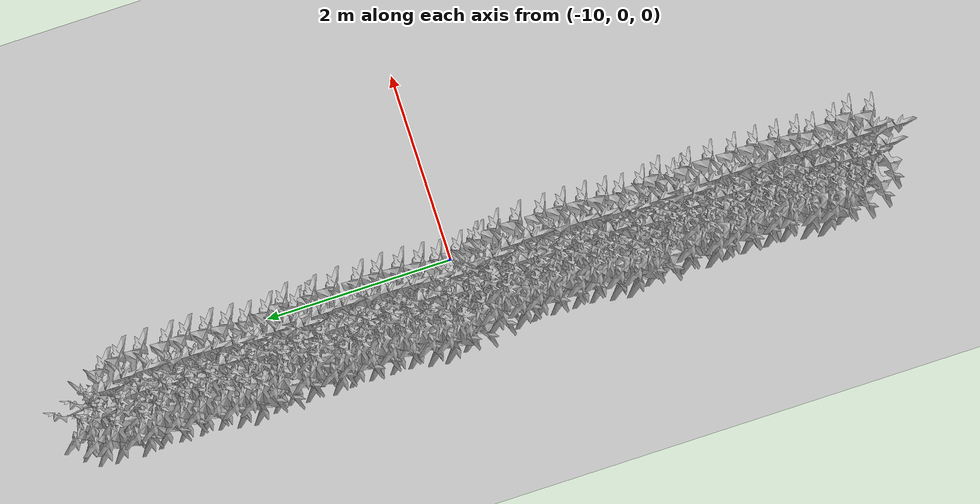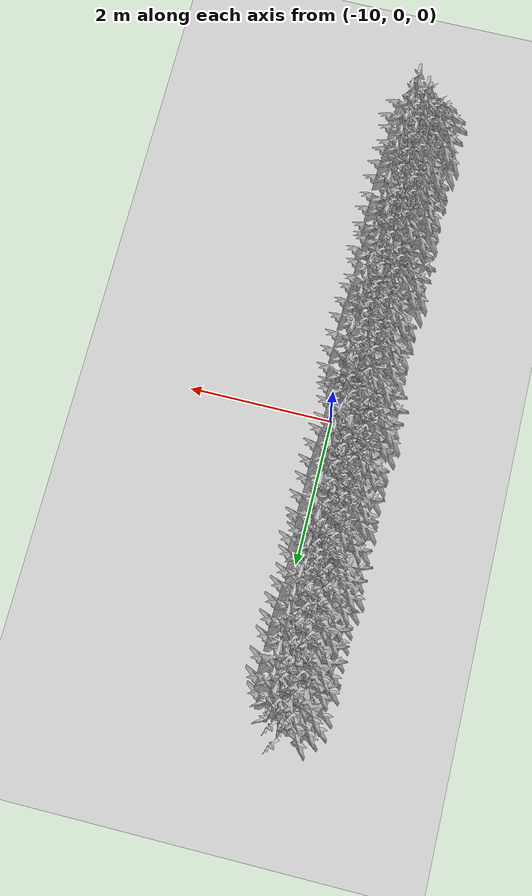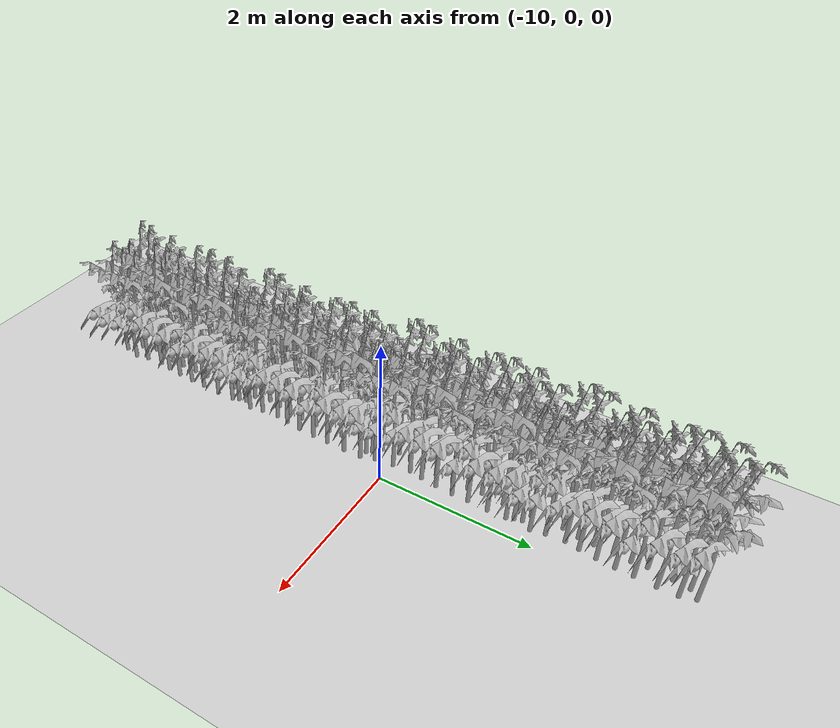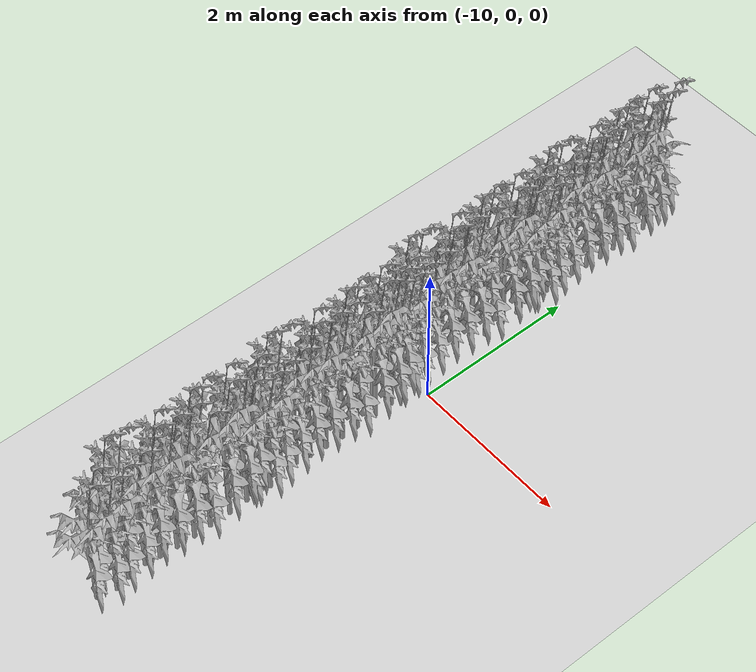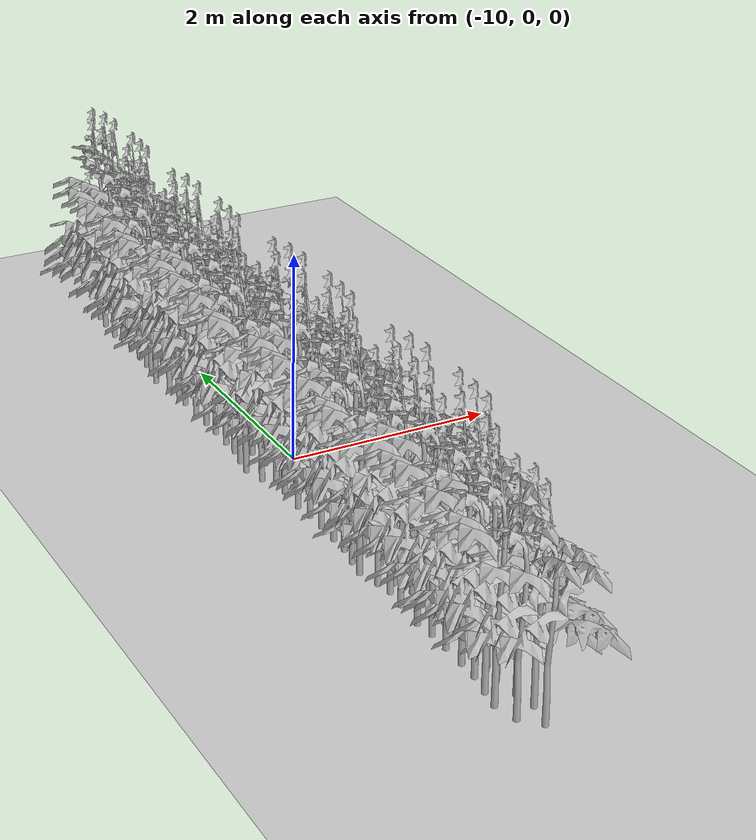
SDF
<sdf version="1.6">
 <world name="default">
  <model name="ground_plane">
   <static>1</static>
   <link name="link">
    <collision name="collision">
     <geometry><plane><normal>0 0 1</normal><size>100 100</size></plane></geometry>
     <surface>
      <contact><collide_bitmask>65535</collide_bitmask></contact>
      <friction><ode><mu>100</mu><mu2>50</mu2></ode></friction>
     </surface>
    </collision>
    <visual name="visual">
     <cast_shadows>0</cast_shadows>
     <geometry><plane><normal>0 0 1</normal><size>100 100</size></plane></geometry>
     <material>
      <script><uri>file://media/materials/scripts/gazebo.material</uri><name>Gazebo/Grey</name></script>
     </material>
    </visual>
   </link>
  </model>
  <model name="MIddle_Plant_3_10">
   <model name="MIddle_Plant_1">
    <model name="tomato_plant_big">
     <static>1</static>
     <link name="link">
      <collision name="collision">
       <pose>0 0 0 1.5708 -0 0</pose>
       <geometry><mesh><scale>0.5 0.6 0.5</scale><uri>model://stick/meshes/stick.dae</uri></mesh></geometry>
      </collision>
      <visual name="visual">
       <geometry>
        <mesh><scale>5e-06 5e-06 7e-06</scale><uri>model://tomato_plant_big/meshes/tomato-plant.dae</uri></mesh>
       </geometry>
      </visual>
     </link>
     <pose>-0.144318 -0.693607 -0 0 -0 0</pose>
    </model>
    <model name="tomato_plant_big_0">
     <static>1</static>
     <link name="link">
      <collision name="collision">
       <pose>0 0 0 1.5708 -0 0</pose>
       <geometry><mesh><scale>0.5 0.6 0.5</scale><uri>model://stick/meshes/stick.dae</uri></mesh></geometry>
      </collision>
      <visual name="visual">
       <geometry>
        <mesh><scale>5e-06 5e-06 7e-06</scale><uri>model://tomato_plant_big/meshes/tomato-plant.dae</uri></mesh>
       </geometry>
      </visual>
     </link>
     <pose>-0.11784 -0.519827 0 0 -0 0</pose>
    </model>
    <model name="tomato_plant_big_1">
     <static>1</static>
     <link name="link">
      <collision name="collision">
       <pose>0 0 0 1.5708 -0 0</pose>
       <geometry><mesh><scale>0.5 0.6 0.5</scale><uri>model://stick/meshes/stick.dae</uri></mesh></geometry>
      </collision>
      <visual name="visual">
       <geometry>
        <mesh><scale>5e-06 5e-06 7e-06</scale><uri>model://tomato_plant_big/meshes/tomato-plant.dae</uri></mesh>
       </geometry>
      </visual>
     </link>
     <pose>0.073755 -0.247584 0 0 -0 0</pose>
    </model>
    <model name="tomato_plant_big_10">
     <static>1</static>
     <link name="link">
      <collision name="collision">
       <pose>0 0 0 1.5708 -0 0</pose>
       <geometry><mesh><scale>0.5 0.6 0.5</scale><uri>model://stick/meshes/stick.dae</uri></mesh></geometry>
      </collision>
      <visual name="visual">
       <geometry>
        <mesh><scale>5e-06 5e-06 7e-06</scale><uri>model://tomato_plant_big/meshes/tomato-plant.dae</uri></mesh>
       </geometry>
      </visual>
     </link>
     <pose>0.037052 1.07094 0 0 -0 0</pose>
    </model>
    <model name="tomato_plant_big_2">
     <static>1</static>
     <link name="link">
      <collision name="collision">
       <pose>0 0 0 1.5708 -0 0</pose>
       <geometry><mesh><scale>0.5 0.6 0.5</scale><uri>model://stick/meshes/stick.dae</uri></mesh></geometry>
      </collision>
      <visual name="visual">
       <geometry>
        <mesh><scale>5e-06 5e-06 7e-06</scale><uri>model://tomato_plant_big/meshes/tomato-plant.dae</uri></mesh>
       </geometry>
      </visual>
     </link>
     <pose>-0.076926 -0.131165 0 0 -0 0</pose>
    </model>
    <model name="tomato_plant_big_3">
     <static>1</static>
     <link name="link">
      <collision name="collision">
       <pose>0 0 0 1.5708 -0 0</pose>
       <geometry><mesh><scale>0.5 0.6 0.5</scale><uri>model://stick/meshes/stick.dae</uri></mesh></geometry>
      </collision>
      <visual name="visual">
       <geometry>
        <mesh><scale>5e-06 5e-06 7e-06</scale><uri>model://tomato_plant_big/meshes/tomato-plant.dae</uri></mesh>
       </geometry>
      </visual>
     </link>
     <pose>0.093714 -0.038386 0 0 -0 0</pose>
    </model>
    <model name="tomato_plant_big_4">
     <static>1</static>
     <link name="link">
      <collision name="collision">
       <pose>0 0 0 1.5708 -0 0</pose>
       <geometry><mesh><scale>0.5 0.6 0.5</scale><uri>model://stick/meshes/stick.dae</uri></mesh></geometry>
      </collision>
      <visual name="visual">
       <geometry>
        <mesh><scale>5e-06 5e-06 7e-06</scale><uri>model://tomato_plant_big/meshes/tomato-plant.dae</uri></mesh>
       </geometry>
      </visual>
     </link>
     <pose>0.103117 0.184356 0 0 -0 0</pose>
    </model>
    <model name="tomato_plant_big_5">
     <static>1</static>
     <link name="link">
      <collision name="collision">
       <pose>0 0 0 1.5708 -0 0</pose>
       <geometry><mesh><scale>0.5 0.6 0.5</scale><uri>model://stick/meshes/stick.dae</uri></mesh></geometry>
      </collision>
      <visual name="visual">
       <geometry>
        <mesh><scale>5e-06 5e-06 7e-06</scale><uri>model://tomato_plant_big/meshes/tomato-plant.dae</uri></mesh>
       </geometry>
      </visual>
     </link>
     <pose>-0.074883 0.301479 0 0 -0 0</pose>
    </model>
    <model name="tomato_plant_big_6">
     <static>1</static>
     <link name="link">
      <collision name="collision">
       <pose>0 0 0 1.5708 -0 0</pose>
       <geometry><mesh><scale>0.5 0.6 0.5</scale><uri>model://stick/meshes/stick.dae</uri></mesh></geometry>
      </collision>
      <visual name="visual">
       <geometry>
        <mesh><scale>5e-06 5e-06 7e-06</scale><uri>model://tomato_plant_big/meshes/tomato-plant.dae</uri></mesh>
       </geometry>
      </visual>
     </link>
     <pose>-0.096921 0.484007 0 0 -0 0</pose>
    </model>
    <model name="tomato_plant_big_7">
     <static>1</static>
     <link name="link">
      <collision name="collision">
       <pose>0 0 0 1.5708 -0 0</pose>
       <geometry><mesh><scale>0.5 0.6 0.5</scale><uri>model://stick/meshes/stick.dae</uri></mesh></geometry>
      </collision>
      <visual name="visual">
       <geometry>
        <mesh><scale>5e-06 5e-06 7e-06</scale><uri>model://tomato_plant_big/meshes/tomato-plant.dae</uri></mesh>
       </geometry>
      </visual>
     </link>
     <pose>0.107491 0.653976 0 0 -0 0</pose>
    </model>
    <model name="tomato_plant_big_8">
     <static>1</static>
     <link name="link">
      <collision name="collision">
       <pose>0 0 0 1.5708 -0 0</pose>
       <geometry><mesh><scale>0.5 0.6 0.5</scale><uri>model://stick/meshes/stick.dae</uri></mesh></geometry>
      </collision>
      <visual name="visual">
       <geometry>
        <mesh><scale>5e-06 5e-06 7e-06</scale><uri>model://tomato_plant_big/meshes/tomato-plant.dae</uri></mesh>
       </geometry>
      </visual>
     </link>
     <pose>-0.07985 0.768549 0 0 -0 0</pose>
    </model>
    <model name="tomato_plant_big_9">
     <static>1</static>
     <link name="link">
      <collision name="collision">
       <pose>0 0 0 1.5708 -0 0</pose>
       <geometry><mesh><scale>0.5 0.6 0.5</scale><uri>model://stick/meshes/stick.dae</uri></mesh></geometry>
      </collision>
      <visual name="visual">
       <geometry>
        <mesh><scale>5e-06 5e-06 7e-06</scale><uri>model://tomato_plant_big/meshes/tomato-plant.dae</uri></mesh>
       </geometry>
      </visual>
     </link>
     <pose>0.098361 0.890852 0 0 -0 0</pose>
    </model>
    <model name="tomato_plant_medium">
     <static>1</static>
     <link name="link">
      <collision name="collision">
       <pose>0 0 0 1.5708 -0 0</pose>
       <geometry><mesh><scale>0.5 0.5 0.5</scale><uri>model://stick/meshes/stick.dae</uri></mesh></geometry>
      </collision>
      <visual name="visual">
       <geometry>
        <mesh><scale>5e-06 5e-06 6e-06</scale><uri>model://tomato_plant_medium/meshes/tomato-plant.dae</uri></mesh>
       </geometry>
      </visual>
     </link>
     <pose>0.056913 -1.05328 0 0 -0 0</pose>
    </model>
    <model name="tomato_plant_medium_0">
     <static>1</static>
     <link name="link">
      <collision name="collision">
       <pose>0 0 0 1.5708 -0 0</pose>
       <geometry><mesh><scale>0.5 0.5 0.5</scale><uri>model://stick/meshes/stick.dae</uri></mesh></geometry>
      </collision>
      <visual name="visual">
       <geometry>
        <mesh><scale>5e-06 5e-06 6e-06</scale><uri>model://tomato_plant_medium/meshes/tomato-plant.dae</uri></mesh>
       </geometry>
      </visual>
     </link>
     <pose>-0.092719 -0.905729 0 0 -0 0</pose>
    </model>
    <model name="tomato_plant_medium_1">
     <static>1</static>
     <link name="link">
      <collision name="collision">
       <pose>0 0 0 1.5708 -0 0</pose>
       <geometry><mesh><scale>0.5 0.5 0.5</scale><uri>model://stick/meshes/stick.dae</uri></mesh></geometry>
      </collision>
      <visual name="visual">
       <geometry>
        <mesh><scale>5e-06 5e-06 6e-06</scale><uri>model://tomato_plant_medium/meshes/tomato-plant.dae</uri></mesh>
       </geometry>
      </visual>
     </link>
     <pose>0.108962 -0.829637 0 0 -0 0</pose>
    </model>
    <model name="tomato_plant_medium_2">
     <static>1</static>
     <link name="link">
      <collision name="collision">
       <pose>0 0 0 1.5708 -0 0</pose>
       <geometry><mesh><scale>0.5 0.5 0.5</scale><uri>model://stick/meshes/stick.dae</uri></mesh></geometry>
      </collision>
      <visual name="visual">
       <geometry>
        <mesh><scale>5e-06 5e-06 6e-06</scale><uri>model://tomato_plant_medium/meshes/tomato-plant.dae</uri></mesh>
       </geometry>
      </visual>
     </link>
     <pose>0.071216 -0.652507 0 0 -0 0</pose>
    </model>
    <model name="tomato_plant_medium_3">
     <static>1</static>
     <link name="link">
      <collision name="collision">
       <pose>0 0 0 1.5708 -0 0</pose>
       <geometry><mesh><scale>0.5 0.5 0.5</scale><uri>model://stick/meshes/stick.dae</uri></mesh></geometry>
      </collision>
      <visual name="visual">
       <geometry>
        <mesh><scale>5e-06 5e-06 6e-06</scale><uri>model://tomato_plant_medium/meshes/tomato-plant.dae</uri></mesh>
       </geometry>
      </visual>
     </link>
     <pose>0.047335 -0.423046 0 0 -0 0</pose>
    </model>
    <model name="tomato_plant_medium_4">
     <static>1</static>
     <link name="link">
      <collision name="collision">
       <pose>0 0 0 1.5708 -0 0</pose>
       <geometry><mesh><scale>0.5 0.5 0.5</scale><uri>model://stick/meshes/stick.dae</uri></mesh></geometry>
      </collision>
      <visual name="visual">
       <geometry>
        <mesh><scale>5e-06 5e-06 6e-06</scale><uri>model://tomato_plant_medium/meshes/tomato-plant.dae</uri></mesh>
       </geometry>
      </visual>
     </link>
     <pose>-0.081012 -0.320324 0 0 -0 0</pose>
    </model>
    <model name="tomato_plant_medium_5">
     <static>1</static>
     <link name="link">
      <collision name="collision">
       <pose>0 0 0 1.5708 -0 0</pose>
       <geometry><mesh><scale>0.5 0.5 0.5</scale><uri>model://stick/meshes/stick.dae</uri></mesh></geometry>
      </collision>
      <visual name="visual">
       <geometry>
        <mesh><scale>5e-06 5e-06 6e-06</scale><uri>model://tomato_plant_medium/meshes/tomato-plant.dae</uri></mesh>
       </geometry>
      </visual>
     </link>
     <pose>-0.07452 0.095988 0 0 -0 0</pose>
    </model>
    <model name="tomato_plant_medium_6">
     <static>1</static>
     <link name="link">
      <collision name="collision">
       <pose>0 0 0 1.5708 -0 0</pose>
       <geometry><mesh><scale>0.5 0.5 0.5</scale><uri>model://stick/meshes/stick.dae</uri></mesh></geometry>
      </collision>
      <visual name="visual">
       <geometry>
        <mesh><scale>5e-06 5e-06 6e-06</scale><uri>model://tomato_plant_medium/meshes/tomato-plant.dae</uri></mesh>
       </geometry>
      </visual>
     </link>
     <pose>0.101424 0.395443 0 0 -0 0</pose>
    </model>
    <model name="tomato_plant_small">
     <static>1</static>
     <link name="link">
      <collision name="collision">
       <pose>0 0 0 1.5708 -0 0</pose>
       <geometry><mesh><scale>0.5 0.45 0.5</scale><uri>model://stick/meshes/stick.dae</uri></mesh></geometry>
      </collision>
      <visual name="visual">
       <geometry>
        <mesh><scale>5e-06 5e-06 5e-06</scale><uri>model://tomato_plant_small/meshes/tomato-plant.dae</uri></mesh>
       </geometry>
      </visual>
     </link>
     <pose>-0.060351 0.969512 0 0 -0 0</pose>
    </model>
    <static>0</static>
    <pose>0.040757 1.77284 0 0 -0 0</pose>
   </model>
   <model name="MIddle_Plant_2">
    <model name="MIddle_Plant_1">
     <model name="tomato_plant_big">
      <static>1</static>
      <link name="link">
       <collision name="collision">
        <pose>0 0 0 1.5708 -0 0</pose>
        <geometry><mesh><scale>0.5 0.6 0.5</scale><uri>model://stick/meshes/stick.dae</uri></mesh></geometry>
       </collision>
       <visual name="visual">
        <geometry>
         <mesh><scale>5e-06 5e-06 7e-06</scale><uri>model://tomato_plant_big/meshes/tomato-plant.dae</uri></mesh>
        </geometry>
       </visual>
      </link>
      <pose>-0.144318 -0.693607 -0 0 -0 0</pose>
     </model>
     <model name="tomato_plant_big_0">
      <static>1</static>
      <link name="link">
       <collision name="collision">
        <pose>0 0 0 1.5708 -0 0</pose>
        <geometry><mesh><scale>0.5 0.6 0.5</scale><uri>model://stick/meshes/stick.dae</uri></mesh></geometry>
       </collision>
       <visual name="visual">
        <geometry>
         <mesh><scale>5e-06 5e-06 7e-06</scale><uri>model://tomato_plant_big/meshes/tomato-plant.dae</uri></mesh>
        </geometry>
       </visual>
      </link>
      <pose>-0.11784 -0.519827 0 0 -0 0</pose>
     </model>
     <model name="tomato_plant_big_1">
      <static>1</static>
      <link name="link">
       <collision name="collision">
        <pose>0 0 0 1.5708 -0 0</pose>
        <geometry><mesh><scale>0.5 0.6 0.5</scale><uri>model://stick/meshes/stick.dae</uri></mesh></geometry>
       </collision>
       <visual name="visual">
        <geometry>
         <mesh><scale>5e-06 5e-06 7e-06</scale><uri>model://tomato_plant_big/meshes/tomato-plant.dae</uri></mesh>
        </geometry>
       </visual>
      </link>
      <pose>0.073755 -0.247584 0 0 -0 0</pose>
     </model>
     <model name="tomato_plant_big_10">
      <static>1</static>
      <link name="link">
       <collision name="collision">
        <pose>0 0 0 1.5708 -0 0</pose>
        <geometry><mesh><scale>0.5 0.6 0.5</scale><uri>model://stick/meshes/stick.dae</uri></mesh></geometry>
       </collision>
       <visual name="visual">
        <geometry>
         <mesh><scale>5e-06 5e-06 7e-06</scale><uri>model://tomato_plant_big/meshes/tomato-plant.dae</uri></mesh>
        </geometry>
       </visual>
      </link>
      <pose>0.037052 1.07094 0 0 -0 0</pose>
     </model>
     <model name="tomato_plant_big_2">
      <static>1</static>
      <link name="link">
       <collision name="collision">
        <pose>0 0 0 1.5708 -0 0</pose>
        <geometry><mesh><scale>0.5 0.6 0.5</scale><uri>model://stick/meshes/stick.dae</uri></mesh></geometry>
       </collision>
       <visual name="visual">
        <geometry>
         <mesh><scale>5e-06 5e-06 7e-06</scale><uri>model://tomato_plant_big/meshes/tomato-plant.dae</uri></mesh>
        </geometry>
       </visual>
      </link>
      <pose>-0.076926 -0.131165 0 0 -0 0</pose>
     </model>
     <model name="tomato_plant_big_3">
      <static>1</static>
      <link name="link">
       <collision name="collision">
        <pose>0 0 0 1.5708 -0 0</pose>
        <geometry><mesh><scale>0.5 0.6 0.5</scale><uri>model://stick/meshes/stick.dae</uri></mesh></geometry>
       </collision>
       <visual name="visual">
        <geometry>
         <mesh><scale>5e-06 5e-06 7e-06</scale><uri>model://tomato_plant_big/meshes/tomato-plant.dae</uri></mesh>
        </geometry>
       </visual>
      </link>
      <pose>0.093714 -0.038386 0 0 -0 0</pose>
     </model>
     <model name="tomato_plant_big_4">
      <static>1</static>
      <link name="link">
       <collision name="collision">
        <pose>0 0 0 1.5708 -0 0</pose>
        <geometry><mesh><scale>0.5 0.6 0.5</scale><uri>model://stick/meshes/stick.dae</uri></mesh></geometry>
       </collision>
       <visual name="visual">
        <geometry>
         <mesh><scale>5e-06 5e-06 7e-06</scale><uri>model://tomato_plant_big/meshes/tomato-plant.dae</uri></mesh>
        </geometry>
       </visual>
      </link>
      <pose>0.103117 0.184356 0 0 -0 0</pose>
     </model>
     <model name="tomato_plant_big_5">
      <static>1</static>
      <link name="link">
       <collision name="collision">
        <pose>0 0 0 1.5708 -0 0</pose>
        <geometry><mesh><scale>0.5 0.6 0.5</scale><uri>model://stick/meshes/stick.dae</uri></mesh></geometry>
       </collision>
       <visual name="visual">
        <geometry>
         <mesh><scale>5e-06 5e-06 7e-06</scale><uri>model://tomato_plant_big/meshes/tomato-plant.dae</uri></mesh>
        </geometry>
       </visual>
      </link>
      <pose>-0.074883 0.301479 0 0 -0 0</pose>
     </model>
     <model name="tomato_plant_big_6">
      <static>1</static>
      <link name="link">
       <collision name="collision">
        <pose>0 0 0 1.5708 -0 0</pose>
        <geometry><mesh><scale>0.5 0.6 0.5</scale><uri>model://stick/meshes/stick.dae</uri></mesh></geometry>
       </collision>
       <visual name="visual">
        <geometry>
         <mesh><scale>5e-06 5e-06 7e-06</scale><uri>model://tomato_plant_big/meshes/tomato-plant.dae</uri></mesh>
        </geometry>
       </visual>
      </link>
      <pose>-0.096921 0.484007 0 0 -0 0</pose>
     </model>
     <model name="tomato_plant_big_7">
      <static>1</static>
      <link name="link">
       <collision name="collision">
        <pose>0 0 0 1.5708 -0 0</pose>
        <geometry><mesh><scale>0.5 0.6 0.5</scale><uri>model://stick/meshes/stick.dae</uri></mesh></geometry>
       </collision>
       <visual name="visual">
        <geometry>
         <mesh><scale>5e-06 5e-06 7e-06</scale><uri>model://tomato_plant_big/meshes/tomato-plant.dae</uri></mesh>
        </geometry>
       </visual>
      </link>
      <pose>0.107491 0.653976 0 0 -0 0</pose>
     </model>
     <model name="tomato_plant_big_8">
      <static>1</static>
      <link name="link">
       <collision name="collision">
        <pose>0 0 0 1.5708 -0 0</pose>
        <geometry><mesh><scale>0.5 0.6 0.5</scale><uri>model://stick/meshes/stick.dae</uri></mesh></geometry>
       </collision>
       <visual name="visual">
        <geometry>
         <mesh><scale>5e-06 5e-06 7e-06</scale><uri>model://tomato_plant_big/meshes/tomato-plant.dae</uri></mesh>
        </geometry>
       </visual>
      </link>
      <pose>-0.07985 0.768549 0 0 -0 0</pose>
     </model>
     <model name="tomato_plant_big_9">
      <static>1</static>
      <link name="link">
       <collision name="collision">
        <pose>0 0 0 1.5708 -0 0</pose>
        <geometry><mesh><scale>0.5 0.6 0.5</scale><uri>model://stick/meshes/stick.dae</uri></mesh></geometry>
       </collision>
       <visual name="visual">
        <geometry>
         <mesh><scale>5e-06 5e-06 7e-06</scale><uri>model://tomato_plant_big/meshes/tomato-plant.dae</uri></mesh>
        </geometry>
       </visual>
      </link>
      <pose>0.098361 0.890852 0 0 -0 0</pose>
     </model>
     <model name="tomato_plant_medium">
      <static>1</static>
      <link name="link">
       <collision name="collision">
        <pose>0 0 0 1.5708 -0 0</pose>
        <geometry><mesh><scale>0.5 0.5 0.5</scale><uri>model://stick/meshes/stick.dae</uri></mesh></geometry>
       </collision>
       <visual name="visual">
        <geometry>
         <mesh><scale>5e-06 5e-06 6e-06</scale><uri>model://tomato_plant_medium/meshes/tomato-plant.dae</uri></mesh>
        </geometry>
       </visual>
      </link>
      <pose>0.056913 -1.05328 0 0 -0 0</pose>
     </model>
     <model name="tomato_plant_medium_0">
      <static>1</static>
      <link name="link">
       <collision name="collision">
        <pose>0 0 0 1.5708 -0 0</pose>
        <geometry><mesh><scale>0.5 0.5 0.5</scale><uri>model://stick/meshes/stick.dae</uri></mesh></geometry>
       </collision>
       <visual name="visual">
        <geometry>
         <mesh><scale>5e-06 5e-06 6e-06</scale><uri>model://tomato_plant_medium/meshes/tomato-plant.dae</uri></mesh>
        </geometry>
       </visual>
      </link>
      <pose>-0.092719 -0.905729 0 0 -0 0</pose>
     </model>
     <model name="tomato_plant_medium_1">
      <static>1</static>
      <link name="link">
       <collision name="collision">
        <pose>0 0 0 1.5708 -0 0</pose>
        <geometry><mesh><scale>0.5 0.5 0.5</scale><uri>model://stick/meshes/stick.dae</uri></mesh></geometry>
       </collision>
       <visual name="visual">
        <geometry>
         <mesh><scale>5e-06 5e-06 6e-06</scale><uri>model://tomato_plant_medium/meshes/tomato-plant.dae</uri></mesh>
        </geometry>
       </visual>
      </link>
      <pose>0.108962 -0.829637 0 0 -0 0</pose>
     </model>
     <model name="tomato_plant_medium_2">
      <static>1</static>
      <link name="link">
       <collision name="collision">
        <pose>0 0 0 1.5708 -0 0</pose>
        <geometry><mesh><scale>0.5 0.5 0.5</scale><uri>model://stick/meshes/stick.dae</uri></mesh></geometry>
       </collision>
       <visual name="visual">
        <geometry>
         <mesh><scale>5e-06 5e-06 6e-06</scale><uri>model://tomato_plant_medium/meshes/tomato-plant.dae</uri></mesh>
        </geometry>
       </visual>
      </link>
      <pose>0.071216 -0.652507 0 0 -0 0</pose>
     </model>
     <model name="tomato_plant_medium_3">
      <static>1</static>
      <link name="link">
       <collision name="collision">
        <pose>0 0 0 1.5708 -0 0</pose>
        <geometry><mesh><scale>0.5 0.5 0.5</scale><uri>model://stick/meshes/stick.dae</uri></mesh></geometry>
       </collision>
       <visual name="visual">
        <geometry>
         <mesh><scale>5e-06 5e-06 6e-06</scale><uri>model://tomato_plant_medium/meshes/tomato-plant.dae</uri></mesh>
        </geometry>
       </visual>
      </link>
      <pose>0.047335 -0.423046 0 0 -0 0</pose>
     </model>
     <model name="tomato_plant_medium_4">
      <static>1</static>
      <link name="link">
       <collision name="collision">
        <pose>0 0 0 1.5708 -0 0</pose>
        <geometry><mesh><scale>0.5 0.5 0.5</scale><uri>model://stick/meshes/stick.dae</uri></mesh></geometry>
       </collision>
       <visual name="visual">
        <geometry>
         <mesh><scale>5e-06 5e-06 6e-06</scale><uri>model://tomato_plant_medium/meshes/tomato-plant.dae</uri></mesh>
        </geometry>
       </visual>
      </link>
      <pose>-0.081012 -0.320324 0 0 -0 0</pose>
     </model>
     <model name="tomato_plant_medium_5">
      <static>1</static>
      <link name="link">
       <collision name="collision">
        <pose>0 0 0 1.5708 -0 0</pose>
        <geometry><mesh><scale>0.5 0.5 0.5</scale><uri>model://stick/meshes/stick.dae</uri></mesh></geometry>
       </collision>
       <visual name="visual">
        <geometry>
         <mesh><scale>5e-06 5e-06 6e-06</scale><uri>model://tomato_plant_medium/meshes/tomato-plant.dae</uri></mesh>
        </geometry>
       </visual>
      </link>
      <pose>-0.07452 0.095988 0 0 -0 0</pose>
     </model>
     <model name="tomato_plant_medium_6">
      <static>1</static>
      <link name="link">
       <collision name="collision">
        <pose>0 0 0 1.5708 -0 0</pose>
        <geometry><mesh><scale>0.5 0.5 0.5</scale><uri>model://stick/meshes/stick.dae</uri></mesh></geometry>
       </collision>
       <visual name="visual">
        <geometry>
         <mesh><scale>5e-06 5e-06 6e-06</scale><uri>model://tomato_plant_medium/meshes/tomato-plant.dae</uri></mesh>
        </geometry>
       </visual>
      </link>
      <pose>0.101424 0.395443 0 0 -0 0</pose>
     </model>
     <model name="tomato_plant_small">
      <static>1</static>
      <link name="link">
       <collision name="collision">
        <pose>0 0 0 1.5708 -0 0</pose>
        <geometry><mesh><scale>0.5 0.45 0.5</scale><uri>model://stick/meshes/stick.dae</uri></mesh></geometry>
       </collision>
       <visual name="visual">
        <geometry>
         <mesh><scale>5e-06 5e-06 5e-06</scale><uri>model://tomato_plant_small/meshes/tomato-plant.dae</uri></mesh>
        </geometry>
       </visual>
      </link>
      <pose>-0.060351 0.969512 0 0 -0 0</pose>
     </model>
     <static>0</static>
     <pose>0.763113 0.028917 0 0 -0 0</pose>
    </model>
    <model name="tomato_plant_big">
     <static>1</static>
     <link name="link">
      <collision name="collision">
       <pose>0 0 0 1.5708 -0 0</pose>
       <geometry><mesh><scale>0.5 0.6 0.5</scale><uri>model://stick/meshes/stick.dae</uri></mesh></geometry>
      </collision>
      <visual name="visual">
       <geometry>
        <mesh><scale>5e-06 5e-06 7e-06</scale><uri>model://tomato_plant_big/meshes/tomato-plant.dae</uri></mesh>
       </geometry>
      </visual>
     </link>
     <pose>0.613724 -2.69399 -0 0 -0 0</pose>
    </model>
    <model name="tomato_plant_big_0">
     <static>1</static>
     <link name="link">
      <collision name="collision">
       <pose>0 0 0 1.5708 -0 0</pose>
       <geometry><mesh><scale>0.5 0.6 0.5</scale><uri>model://stick/meshes/stick.dae</uri></mesh></geometry>
      </collision>
      <visual name="visual">
       <geometry>
        <mesh><scale>5e-06 5e-06 7e-06</scale><uri>model://tomato_plant_big/meshes/tomato-plant.dae</uri></mesh>
       </geometry>
      </visual>
     </link>
     <pose>0.640202 -2.52021 0 0 -0 0</pose>
    </model>
    <model name="tomato_plant_big_1">
     <static>1</static>
     <link name="link">
      <collision name="collision">
       <pose>0 0 0 1.5708 -0 0</pose>
       <geometry><mesh><scale>0.5 0.6 0.5</scale><uri>model://stick/meshes/stick.dae</uri></mesh></geometry>
      </collision>
      <visual name="visual">
       <geometry>
        <mesh><scale>5e-06 5e-06 7e-06</scale><uri>model://tomato_plant_big/meshes/tomato-plant.dae</uri></mesh>
       </geometry>
      </visual>
     </link>
     <pose>0.831797 -2.24797 0 0 -0 0</pose>
    </model>
    <model name="tomato_plant_big_10">
     <static>1</static>
     <link name="link">
      <collision name="collision">
       <pose>0 0 0 1.5708 -0 0</pose>
       <geometry><mesh><scale>0.5 0.6 0.5</scale><uri>model://stick/meshes/stick.dae</uri></mesh></geometry>
      </collision>
      <visual name="visual">
       <geometry>
        <mesh><scale>5e-06 5e-06 7e-06</scale><uri>model://tomato_plant_big/meshes/tomato-plant.dae</uri></mesh>
       </geometry>
      </visual>
     </link>
     <pose>0.795094 -0.929446 0 0 -0 0</pose>
    </model>
    <model name="tomato_plant_big_2">
     <static>1</static>
     <link name="link">
      <collision name="collision">
       <pose>0 0 0 1.5708 -0 0</pose>
       <geometry><mesh><scale>0.5 0.6 0.5</scale><uri>model://stick/meshes/stick.dae</uri></mesh></geometry>
      </collision>
      <visual name="visual">
       <geometry>
        <mesh><scale>5e-06 5e-06 7e-06</scale><uri>model://tomato_plant_big/meshes/tomato-plant.dae</uri></mesh>
       </geometry>
      </visual>
     </link>
     <pose>0.681116 -2.13155 0 0 -0 0</pose>
    </model>
    <model name="tomato_plant_big_3">
     <static>1</static>
     <link name="link">
      <collision name="collision">
       <pose>0 0 0 1.5708 -0 0</pose>
       <geometry><mesh><scale>0.5 0.6 0.5</scale><uri>model://stick/meshes/stick.dae</uri></mesh></geometry>
      </collision>
      <visual name="visual">
       <geometry>
        <mesh><scale>5e-06 5e-06 7e-06</scale><uri>model://tomato_plant_big/meshes/tomato-plant.dae</uri></mesh>
       </geometry>
      </visual>
     </link>
     <pose>0.851755 -2.03877 0 0 -0 0</pose>
    </model>
    <model name="tomato_plant_big_4">
     <static>1</static>
     <link name="link">
      <collision name="collision">
       <pose>0 0 0 1.5708 -0 0</pose>
       <geometry><mesh><scale>0.5 0.6 0.5</scale><uri>model://stick/meshes/stick.dae</uri></mesh></geometry>
      </collision>
      <visual name="visual">
       <geometry>
        <mesh><scale>5e-06 5e-06 7e-06</scale><uri>model://tomato_plant_big/meshes/tomato-plant.dae</uri></mesh>
       </geometry>
      </visual>
     </link>
     <pose>0.861158 -1.81603 0 0 -0 0</pose>
    </model>
    <model name="tomato_plant_big_5">
     <static>1</static>
     <link name="link">
      <collision name="collision">
       <pose>0 0 0 1.5708 -0 0</pose>
       <geometry><mesh><scale>0.5 0.6 0.5</scale><uri>model://stick/meshes/stick.dae</uri></mesh></geometry>
      </collision>
      <visual name="visual">
       <geometry>
        <mesh><scale>5e-06 5e-06 7e-06</scale><uri>model://tomato_plant_big/meshes/tomato-plant.dae</uri></mesh>
       </geometry>
      </visual>
     </link>
     <pose>0.683158 -1.69891 0 0 -0 0</pose>
    </model>
    <model name="tomato_plant_big_6">
     <static>1</static>
     <link name="link">
      <collision name="collision">
       <pose>0 0 0 1.5708 -0 0</pose>
       <geometry><mesh><scale>0.5 0.6 0.5</scale><uri>model://stick/meshes/stick.dae</uri></mesh></geometry>
      </collision>
      <visual name="visual">
       <geometry>
        <mesh><scale>5e-06 5e-06 7e-06</scale><uri>model://tomato_plant_big/meshes/tomato-plant.dae</uri></mesh>
       </geometry>
      </visual>
     </link>
     <pose>0.66112 -1.51638 0 0 -0 0</pose>
    </model>
    <model name="tomato_plant_big_7">
     <static>1</static>
     <link name="link">
      <collision name="collision">
       <pose>0 0 0 1.5708 -0 0</pose>
       <geometry><mesh><scale>0.5 0.6 0.5</scale><uri>model://stick/meshes/stick.dae</uri></mesh></geometry>
      </collision>
      <visual name="visual">
       <geometry>
        <mesh><scale>5e-06 5e-06 7e-06</scale><uri>model://tomato_plant_big/meshes/tomato-plant.dae</uri></mesh>
       </geometry>
      </visual>
     </link>
     <pose>0.865532 -1.34641 0 0 -0 0</pose>
    </model>
    <model name="tomato_plant_big_8">
     <static>1</static>
     <link name="link">
      <collision name="collision">
       <pose>0 0 0 1.5708 -0 0</pose>
       <geometry><mesh><scale>0.5 0.6 0.5</scale><uri>model://stick/meshes/stick.dae</uri></mesh></geometry>
      </collision>
      <visual name="visual">
       <geometry>
        <mesh><scale>5e-06 5e-06 7e-06</scale><uri>model://tomato_plant_big/meshes/tomato-plant.dae</uri></mesh>
       </geometry>
      </visual>
     </link>
     <pose>0.678192 -1.23184 0 0 -0 0</pose>
    </model>
    <model name="tomato_plant_big_9">
     <static>1</static>
     <link name="link">
      <collision name="collision">
       <pose>0 0 0 1.5708 -0 0</pose>
       <geometry><mesh><scale>0.5 0.6 0.5</scale><uri>model://stick/meshes/stick.dae</uri></mesh></geometry>
      </collision>
      <visual name="visual">
       <geometry>
        <mesh><scale>5e-06 5e-06 7e-06</scale><uri>model://tomato_plant_big/meshes/tomato-plant.dae</uri></mesh>
       </geometry>
      </visual>
     </link>
     <pose>0.856402 -1.10953 0 0 -0 0</pose>
    </model>
    <model name="tomato_plant_medium">
     <static>1</static>
     <link name="link">
      <collision name="collision">
       <pose>0 0 0 1.5708 -0 0</pose>
       <geometry><mesh><scale>0.5 0.5 0.5</scale><uri>model://stick/meshes/stick.dae</uri></mesh></geometry>
      </collision>
      <visual name="visual">
       <geometry>
        <mesh><scale>5e-06 5e-06 6e-06</scale><uri>model://tomato_plant_medium/meshes/tomato-plant.dae</uri></mesh>
       </geometry>
      </visual>
     </link>
     <pose>0.814955 -3.05367 0 0 -0 0</pose>
    </model>
    <model name="tomato_plant_medium_0">
     <static>1</static>
     <link name="link">
      <collision name="collision">
       <pose>0 0 0 1.5708 -0 0</pose>
       <geometry><mesh><scale>0.5 0.5 0.5</scale><uri>model://stick/meshes/stick.dae</uri></mesh></geometry>
      </collision>
      <visual name="visual">
       <geometry>
        <mesh><scale>5e-06 5e-06 6e-06</scale><uri>model://tomato_plant_medium/meshes/tomato-plant.dae</uri></mesh>
       </geometry>
      </visual>
     </link>
     <pose>0.665322 -2.90611 0 0 -0 0</pose>
    </model>
    <model name="tomato_plant_medium_1">
     <static>1</static>
     <link name="link">
      <collision name="collision">
       <pose>0 0 0 1.5708 -0 0</pose>
       <geometry><mesh><scale>0.5 0.5 0.5</scale><uri>model://stick/meshes/stick.dae</uri></mesh></geometry>
      </collision>
      <visual name="visual">
       <geometry>
        <mesh><scale>5e-06 5e-06 6e-06</scale><uri>model://tomato_plant_medium/meshes/tomato-plant.dae</uri></mesh>
       </geometry>
      </visual>
     </link>
     <pose>0.867004 -2.83002 0 0 -0 0</pose>
    </model>
    <model name="tomato_plant_medium_2">
     <static>1</static>
     <link name="link">
      <collision name="collision">
       <pose>0 0 0 1.5708 -0 0</pose>
       <geometry><mesh><scale>0.5 0.5 0.5</scale><uri>model://stick/meshes/stick.dae</uri></mesh></geometry>
      </collision>
      <visual name="visual">
       <geometry>
        <mesh><scale>5e-06 5e-06 6e-06</scale><uri>model://tomato_plant_medium/meshes/tomato-plant.dae</uri></mesh>
       </geometry>
      </visual>
     </link>
     <pose>0.829257 -2.65289 0 0 -0 0</pose>
    </model>
    <model name="tomato_plant_medium_3">
     <static>1</static>
     <link name="link">
      <collision name="collision">
       <pose>0 0 0 1.5708 -0 0</pose>
       <geometry><mesh><scale>0.5 0.5 0.5</scale><uri>model://stick/meshes/stick.dae</uri></mesh></geometry>
      </collision>
      <visual name="visual">
       <geometry>
        <mesh><scale>5e-06 5e-06 6e-06</scale><uri>model://tomato_plant_medium/meshes/tomato-plant.dae</uri></mesh>
       </geometry>
      </visual>
     </link>
     <pose>0.805376 -2.42343 0 0 -0 0</pose>
    </model>
    <model name="tomato_plant_medium_4">
     <static>1</static>
     <link name="link">
      <collision name="collision">
       <pose>0 0 0 1.5708 -0 0</pose>
       <geometry><mesh><scale>0.5 0.5 0.5</scale><uri>model://stick/meshes/stick.dae</uri></mesh></geometry>
      </collision>
      <visual name="visual">
       <geometry>
        <mesh><scale>5e-06 5e-06 6e-06</scale><uri>model://tomato_plant_medium/meshes/tomato-plant.dae</uri></mesh>
       </geometry>
      </visual>
     </link>
     <pose>0.67703 -2.32071 0 0 -0 0</pose>
    </model>
    <model name="tomato_plant_medium_5">
     <static>1</static>
     <link name="link">
      <collision name="collision">
       <pose>0 0 0 1.5708 -0 0</pose>
       <geometry><mesh><scale>0.5 0.5 0.5</scale><uri>model://stick/meshes/stick.dae</uri></mesh></geometry>
      </collision>
      <visual name="visual">
       <geometry>
        <mesh><scale>5e-06 5e-06 6e-06</scale><uri>model://tomato_plant_medium/meshes/tomato-plant.dae</uri></mesh>
       </geometry>
      </visual>
     </link>
     <pose>0.683522 -1.9044 0 0 -0 0</pose>
    </model>
    <model name="tomato_plant_medium_6">
     <static>1</static>
     <link name="link">
      <collision name="collision">
       <pose>0 0 0 1.5708 -0 0</pose>
       <geometry><mesh><scale>0.5 0.5 0.5</scale><uri>model://stick/meshes/stick.dae</uri></mesh></geometry>
      </collision>
      <visual name="visual">
       <geometry>
        <mesh><scale>5e-06 5e-06 6e-06</scale><uri>model://tomato_plant_medium/meshes/tomato-plant.dae</uri></mesh>
       </geometry>
      </visual>
     </link>
     <pose>0.859466 -1.60494 0 0 -0 0</pose>
    </model>
    <model name="tomato_plant_small">
     <static>1</static>
     <link name="link">
      <collision name="collision">
       <pose>0 0 0 1.5708 -0 0</pose>
       <geometry><mesh><scale>0.5 0.45 0.5</scale><uri>model://stick/meshes/stick.dae</uri></mesh></geometry>
      </collision>
      <visual name="visual">
       <geometry>
        <mesh><scale>5e-06 5e-06 5e-06</scale><uri>model://tomato_plant_small/meshes/tomato-plant.dae</uri></mesh>
       </geometry>
      </visual>
     </link>
     <pose>0.697691 -1.03087 0 0 -0 0</pose>
    </model>
    <static>0</static>
    <pose>-0.78485 5.73439 0 0 -0 0</pose>
   </model>
   <model name="tomato_plant_big">
    <static>1</static>
    <link name="link">
     <collision name="collision">
      <pose>0 0 0 1.5708 -0 0</pose>
      <geometry><mesh><scale>0.5 0.6 0.5</scale><uri>model://stick/meshes/stick.dae</uri></mesh></geometry>
     </collision>
     <visual name="visual">
      <geometry>
       <mesh><scale>5e-06 5e-06 7e-06</scale><uri>model://tomato_plant_big/meshes/tomato-plant.dae</uri></mesh>
      </geometry>
     </visual>
    </link>
    <pose>-0.108632 -0.950068 -0 0 -0 0</pose>
   </model>
   <model name="tomato_plant_big_0">
    <static>1</static>
    <link name="link">
     <collision name="collision">
      <pose>0 0 0 1.5708 -0 0</pose>
      <geometry><mesh><scale>0.5 0.6 0.5</scale><uri>model://stick/meshes/stick.dae</uri></mesh></geometry>
     </collision>
     <visual name="visual">
      <geometry>
       <mesh><scale>5e-06 5e-06 7e-06</scale><uri>model://tomato_plant_big/meshes/tomato-plant.dae</uri></mesh>
      </geometry>
     </visual>
    </link>
    <pose>-0.082154 -0.776288 0 0 -0 0</pose>
   </model>
   <model name="tomato_plant_big_1">
    <static>1</static>
    <link name="link">
     <collision name="collision">
      <pose>0 0 0 1.5708 -0 0</pose>
      <geometry><mesh><scale>0.5 0.6 0.5</scale><uri>model://stick/meshes/stick.dae</uri></mesh></geometry>
     </collision>
     <visual name="visual">
      <geometry>
       <mesh><scale>5e-06 5e-06 7e-06</scale><uri>model://tomato_plant_big/meshes/tomato-plant.dae</uri></mesh>
      </geometry>
     </visual>
    </link>
    <pose>0.109441 -0.504045 0 0 -0 0</pose>
   </model>
   <model name="tomato_plant_big_10">
    <static>1</static>
    <link name="link">
     <collision name="collision">
      <pose>0 0 0 1.5708 -0 0</pose>
      <geometry><mesh><scale>0.5 0.6 0.5</scale><uri>model://stick/meshes/stick.dae</uri></mesh></geometry>
     </collision>
     <visual name="visual">
      <geometry>
       <mesh><scale>5e-06 5e-06 7e-06</scale><uri>model://tomato_plant_big/meshes/tomato-plant.dae</uri></mesh>
      </geometry>
     </visual>
    </link>
    <pose>0.072738 0.814477 0 0 -0 0</pose>
   </model>
   <model name="tomato_plant_big_2">
    <static>1</static>
    <link name="link">
     <collision name="collision">
      <pose>0 0 0 1.5708 -0 0</pose>
      <geometry><mesh><scale>0.5 0.6 0.5</scale><uri>model://stick/meshes/stick.dae</uri></mesh></geometry>
     </collision>
     <visual name="visual">
      <geometry>
       <mesh><scale>5e-06 5e-06 7e-06</scale><uri>model://tomato_plant_big/meshes/tomato-plant.dae</uri></mesh>
      </geometry>
     </visual>
    </link>
    <pose>-0.04124 -0.387626 0 0 -0 0</pose>
   </model>
   <model name="tomato_plant_big_3">
    <static>1</static>
    <link name="link">
     <collision name="collision">
      <pose>0 0 0 1.5708 -0 0</pose>
      <geometry><mesh><scale>0.5 0.6 0.5</scale><uri>model://stick/meshes/stick.dae</uri></mesh></geometry>
     </collision>
     <visual name="visual">
      <geometry>
       <mesh><scale>5e-06 5e-06 7e-06</scale><uri>model://tomato_plant_big/meshes/tomato-plant.dae</uri></mesh>
      </geometry>
     </visual>
    </link>
    <pose>0.129399 -0.294847 0 0 -0 0</pose>
   </model>
   <model name="tomato_plant_big_4">
    <static>1</static>
    <link name="link">
     <collision name="collision">
      <pose>0 0 0 1.5708 -0 0</pose>
      <geometry><mesh><scale>0.5 0.6 0.5</scale><uri>model://stick/meshes/stick.dae</uri></mesh></geometry>
     </collision>
     <visual name="visual">
      <geometry>
       <mesh><scale>5e-06 5e-06 7e-06</scale><uri>model://tomato_plant_big/meshes/tomato-plant.dae</uri></mesh>
      </geometry>
     </visual>
    </link>
    <pose>0.138802 -0.072105 0 0 -0 0</pose>
   </model>
   <model name="tomato_plant_big_5">
    <static>1</static>
    <link name="link">
     <collision name="collision">
      <pose>0 0 0 1.5708 -0 0</pose>
      <geometry><mesh><scale>0.5 0.6 0.5</scale><uri>model://stick/meshes/stick.dae</uri></mesh></geometry>
     </collision>
     <visual name="visual">
      <geometry>
       <mesh><scale>5e-06 5e-06 7e-06</scale><uri>model://tomato_plant_big/meshes/tomato-plant.dae</uri></mesh>
      </geometry>
     </visual>
    </link>
    <pose>-0.039198 0.045018 0 0 -0 0</pose>
   </model>
   <model name="tomato_plant_big_6">
    <static>1</static>
    <link name="link">
     <collision name="collision">
      <pose>0 0 0 1.5708 -0 0</pose>
      <geometry><mesh><scale>0.5 0.6 0.5</scale><uri>model://stick/meshes/stick.dae</uri></mesh></geometry>
     </collision>
     <visual name="visual">
      <geometry>
       <mesh><scale>5e-06 5e-06 7e-06</scale><uri>model://tomato_plant_big/meshes/tomato-plant.dae</uri></mesh>
      </geometry>
     </visual>
    </link>
    <pose>-0.061236 0.227546 0 0 -0 0</pose>
   </model>
   <model name="tomato_plant_big_7">
    <static>1</static>
    <link name="link">
     <collision name="collision">
      <pose>0 0 0 1.5708 -0 0</pose>
      <geometry><mesh><scale>0.5 0.6 0.5</scale><uri>model://stick/meshes/stick.dae</uri></mesh></geometry>
     </collision>
     <visual name="visual">
      <geometry>
       <mesh><scale>5e-06 5e-06 7e-06</scale><uri>model://tomato_plant_big/meshes/tomato-plant.dae</uri></mesh>
      </geometry>
     </visual>
    </link>
    <pose>0.143176 0.397515 0 0 -0 0</pose>
   </model>
   <model name="tomato_plant_big_8">
    <static>1</static>
    <link name="link">
     <collision name="collision">
      <pose>0 0 0 1.5708 -0 0</pose>
      <geometry><mesh><scale>0.5 0.6 0.5</scale><uri>model://stick/meshes/stick.dae</uri></mesh></geometry>
     </collision>
     <visual name="visual">
      <geometry>
       <mesh><scale>5e-06 5e-06 7e-06</scale><uri>model://tomato_plant_big/meshes/tomato-plant.dae</uri></mesh>
      </geometry>
     </visual>
    </link>
    <pose>-0.044164 0.512088 0 0 -0 0</pose>
   </model>
   <model name="tomato_plant_big_9">
    <static>1</static>
    <link name="link">
     <collision name="collision">
      <pose>0 0 0 1.5708 -0 0</pose>
      <geometry><mesh><scale>0.5 0.6 0.5</scale><uri>model://stick/meshes/stick.dae</uri></mesh></geometry>
     </collision>
     <visual name="visual">
      <geometry>
       <mesh><scale>5e-06 5e-06 7e-06</scale><uri>model://tomato_plant_big/meshes/tomato-plant.dae</uri></mesh>
      </geometry>
     </visual>
    </link>
    <pose>0.134046 0.634391 0 0 -0 0</pose>
   </model>
   <model name="tomato_plant_medium">
    <static>1</static>
    <link name="link">
     <collision name="collision">
      <pose>0 0 0 1.5708 -0 0</pose>
      <geometry><mesh><scale>0.5 0.5 0.5</scale><uri>model://stick/meshes/stick.dae</uri></mesh></geometry>
     </collision>
     <visual name="visual">
      <geometry>
       <mesh><scale>5e-06 5e-06 6e-06</scale><uri>model://tomato_plant_medium/meshes/tomato-plant.dae</uri></mesh>
      </geometry>
     </visual>
    </link>
    <pose>0.092599 -1.30974 0 0 -0 0</pose>
   </model>
   <model name="tomato_plant_medium_0">
    <static>1</static>
    <link name="link">
     <collision name="collision">
      <pose>0 0 0 1.5708 -0 0</pose>
      <geometry><mesh><scale>0.5 0.5 0.5</scale><uri>model://stick/meshes/stick.dae</uri></mesh></geometry>
     </collision>
     <visual name="visual">
      <geometry>
       <mesh><scale>5e-06 5e-06 6e-06</scale><uri>model://tomato_plant_medium/meshes/tomato-plant.dae</uri></mesh>
      </geometry>
     </visual>
    </link>
    <pose>-0.057034 -1.16219 0 0 -0 0</pose>
   </model>
   <model name="tomato_plant_medium_1">
    <static>1</static>
    <link name="link">
     <collision name="collision">
      <pose>0 0 0 1.5708 -0 0</pose>
      <geometry><mesh><scale>0.5 0.5 0.5</scale><uri>model://stick/meshes/stick.dae</uri></mesh></geometry>
     </collision>
     <visual name="visual">
      <geometry>
       <mesh><scale>5e-06 5e-06 6e-06</scale><uri>model://tomato_plant_medium/meshes/tomato-plant.dae</uri></mesh>
      </geometry>
     </visual>
    </link>
    <pose>0.144648 -1.0861 0 0 -0 0</pose>
   </model>
   <model name="tomato_plant_medium_2">
    <static>1</static>
    <link name="link">
     <collision name="collision">
      <pose>0 0 0 1.5708 -0 0</pose>
      <geometry><mesh><scale>0.5 0.5 0.5</scale><uri>model://stick/meshes/stick.dae</uri></mesh></geometry>
     </collision>
     <visual name="visual">
      <geometry>
       <mesh><scale>5e-06 5e-06 6e-06</scale><uri>model://tomato_plant_medium/meshes/tomato-plant.dae</uri></mesh>
      </geometry>
     </visual>
    </link>
    <pose>0.106901 -0.908968 0 0 -0 0</pose>
   </model>
   <model name="tomato_plant_medium_3">
    <static>1</static>
    <link name="link">
     <collision name="collision">
      <pose>0 0 0 1.5708 -0 0</pose>
      <geometry><mesh><scale>0.5 0.5 0.5</scale><uri>model://stick/meshes/stick.dae</uri></mesh></geometry>
     </collision>
     <visual name="visual">
      <geometry>
       <mesh><scale>5e-06 5e-06 6e-06</scale><uri>model://tomato_plant_medium/meshes/tomato-plant.dae</uri></mesh>
      </geometry>
     </visual>
    </link>
    <pose>0.08302 -0.679508 0 0 -0 0</pose>
   </model>
   <model name="tomato_plant_medium_4">
    <static>1</static>
    <link name="link">
     <collision name="collision">
      <pose>0 0 0 1.5708 -0 0</pose>
      <geometry><mesh><scale>0.5 0.5 0.5</scale><uri>model://stick/meshes/stick.dae</uri></mesh></geometry>
     </collision>
     <visual name="visual">
      <geometry>
       <mesh><scale>5e-06 5e-06 6e-06</scale><uri>model://tomato_plant_medium/meshes/tomato-plant.dae</uri></mesh>
      </geometry>
     </visual>
    </link>
    <pose>-0.045326 -0.576785 0 0 -0 0</pose>
   </model>
   <model name="tomato_plant_medium_5">
    <static>1</static>
    <link name="link">
     <collision name="collision">
      <pose>0 0 0 1.5708 -0 0</pose>
      <geometry><mesh><scale>0.5 0.5 0.5</scale><uri>model://stick/meshes/stick.dae</uri></mesh></geometry>
     </collision>
     <visual name="visual">
      <geometry>
       <mesh><scale>5e-06 5e-06 6e-06</scale><uri>model://tomato_plant_medium/meshes/tomato-plant.dae</uri></mesh>
      </geometry>
     </visual>
    </link>
    <pose>-0.038834 -0.160473 0 0 -0 0</pose>
   </model>
   <model name="tomato_plant_medium_6">
    <static>1</static>
    <link name="link">
     <collision name="collision">
      <pose>0 0 0 1.5708 -0 0</pose>
      <geometry><mesh><scale>0.5 0.5 0.5</scale><uri>model://stick/meshes/stick.dae</uri></mesh></geometry>
     </collision>
     <visual name="visual">
      <geometry>
       <mesh><scale>5e-06 5e-06 6e-06</scale><uri>model://tomato_plant_medium/meshes/tomato-plant.dae</uri></mesh>
      </geometry>
     </visual>
    </link>
    <pose>0.13711 0.138982 0 0 -0 0</pose>
   </model>
   <model name="tomato_plant_small">
    <static>1</static>
    <link name="link">
     <collision name="collision">
      <pose>0 0 0 1.5708 -0 0</pose>
      <geometry><mesh><scale>0.5 0.45 0.5</scale><uri>model://stick/meshes/stick.dae</uri></mesh></geometry>
     </collision>
     <visual name="visual">
      <geometry>
       <mesh><scale>5e-06 5e-06 5e-06</scale><uri>model://tomato_plant_small/meshes/tomato-plant.dae</uri></mesh>
      </geometry>
     </visual>
    </link>
    <pose>-0.024665 0.713051 0 0 -0 0</pose>
   </model>
   <static>0</static>
   <pose>-10.3044 -3.07442 0 0 -0 0</pose>
  </model>
 </world>
</sdf>
